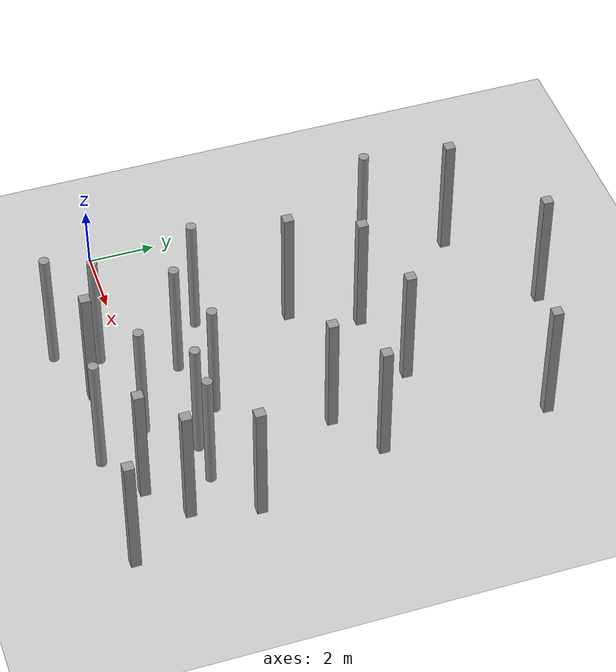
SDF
<sdf version="1.6">
 <world name="default">
  <model name="ground_plane">
   <static>1</static>
   <link name="link">
    <collision name="collision">
     <geometry><plane><normal>0 0 1</normal><size>100 100</size></plane></geometry>
    </collision>
    <visual name="visual">
     <cast_shadows>0</cast_shadows>
     <geometry><plane><normal>0 0 1</normal><size>100 100</size></plane></geometry>
     <material>
      <script><uri>file://media/materials/scripts/gazebo.material</uri><name>Gazebo/Gray</name></script>
     </material>
    </visual>
   </link>
  </model>
  <model name="unit_box_clone_6">
   <link name="link">
    <inertial>
     <mass>1000</mass>
     <inertia><ixx>166.667</ixx><ixy>0</ixy><ixz>0</ixz><iyy>166.667</iyy><iyz>0</iyz><izz>166.667</izz></inertia>
    </inertial>
    <visual name="visual">
     <geometry><box><size>0.3 0.3 4</size></box></geometry>
     <material>
      <script><name>Gazebo/Grey</name><uri>file://media/materials/scripts/gazebo.material</uri></script>
      <shader type="vertex"><normal_map>__default__</normal_map></shader>
      <ambient>0.3 0.3 0.3 1</ambient>
      <diffuse>0.7 0.7 0.7 1</diffuse>
      <specular>0.01 0.01 0.01 1</specular>
      <emissive>0 0 0 1</emissive>
     </material>
    </visual>
    <collision name="collision">
     <geometry><box><size>0.3 0.3 4</size></box></geometry>
     <surface>
      <friction>
       <ode><mu>1</mu><mu2>1</mu2><fdir1>0 0 0</fdir1><slip1>0</slip1><slip2>0</slip2></ode>
       <torsional>
        <coefficient>1</coefficient>
        <patch_radius>0</patch_radius>
        <surface_radius>0</surface_radius>
        <use_patch_radius>1</use_patch_radius>
        <ode><slip>0</slip></ode>
       </torsional>
      </friction>
      <bounce><restitution_coefficient>0</restitution_coefficient><threshold>1e+06</threshold></bounce>
      <contact>
       <collide_without_contact>0</collide_without_contact>
       <collide_without_contact_bitmask>1</collide_without_contact_bitmask>
       <collide_bitmask>1</collide_bitmask>
       <ode>
        <soft_cfm>0</soft_cfm>
        <soft_erp>0.2</soft_erp>
        <kp>1e+13</kp>
        <kd>1</kd>
        <max_vel>0.01</max_vel>
        <min_depth>0</min_depth>
       </ode>
       <bullet>
        <split_impulse>1</split_impulse>
        <split_impulse_penetration_threshold>-0.01</split_impulse_penetration_threshold>
        <soft_cfm>0</soft_cfm>
        <soft_erp>0.2</soft_erp>
        <kp>1e+13</kp>
        <kd>1</kd>
       </bullet>
      </contact>
     </surface>
    </collision>
   </link>
   <static>0</static>
   <pose>10.5124 0.091606 2 -3e-06 1e-05 -0.009171</pose>
  </model>
  <model name="unit_cylinder">
   <link name="link">
    <inertial>
     <mass>1000</mass>
     <inertia><ixx>145.833</ixx><ixy>0</ixy><ixz>0</ixz><iyy>145.833</iyy><iyz>0</iyz><izz>125</izz></inertia>
    </inertial>
    <visual name="visual">
     <geometry><cylinder><radius>0.15</radius><length>4</length></cylinder></geometry>
     <material>
      <script><name>Gazebo/Grey</name><uri>file://media/materials/scripts/gazebo.material</uri></script>
      <shader type="vertex"><normal_map>__default__</normal_map></shader>
      <ambient>0.3 0.3 0.3 1</ambient>
      <diffuse>0.7 0.7 0.7 1</diffuse>
      <specular>0.01 0.01 0.01 1</specular>
      <emissive>0 0 0 1</emissive>
     </material>
    </visual>
    <collision name="collision">
     <geometry><cylinder><radius>0.15</radius><length>4</length></cylinder></geometry>
     <surface>
      <friction>
       <ode><mu>1</mu><mu2>1</mu2><fdir1>0 0 0</fdir1><slip1>0</slip1><slip2>0</slip2></ode>
       <torsional>
        <coefficient>1</coefficient>
        <patch_radius>0</patch_radius>
        <surface_radius>0</surface_radius>
        <use_patch_radius>1</use_patch_radius>
        <ode><slip>0</slip></ode>
       </torsional>
      </friction>
      <bounce><restitution_coefficient>0</restitution_coefficient><threshold>1e+06</threshold></bounce>
      <contact>
       <collide_without_contact>0</collide_without_contact>
       <collide_without_contact_bitmask>1</collide_without_contact_bitmask>
       <collide_bitmask>1</collide_bitmask>
       <ode>
        <soft_cfm>0</soft_cfm>
        <soft_erp>0.2</soft_erp>
        <kp>1e+13</kp>
        <kd>1</kd>
        <max_vel>0.01</max_vel>
        <min_depth>0</min_depth>
       </ode>
       <bullet>
        <split_impulse>1</split_impulse>
        <split_impulse_penetration_threshold>-0.01</split_impulse_penetration_threshold>
        <soft_cfm>0</soft_cfm>
        <soft_erp>0.2</soft_erp>
        <kp>1e+13</kp>
        <kd>1</kd>
       </bullet>
      </contact>
     </surface>
    </collision>
   </link>
   <static>0</static>
   <pose>3.557 2.30203 1.99998 -1e-06 1e-06 -0.168337</pose>
  </model>
  <model name="unit_cylinder_clone_4">
   <link name="link">
    <inertial>
     <mass>1000</mass>
     <inertia><ixx>145.833</ixx><ixy>0</ixy><ixz>0</ixz><iyy>145.833</iyy><iyz>0</iyz><izz>125</izz></inertia>
    </inertial>
    <visual name="visual">
     <geometry><cylinder><radius>0.15</radius><length>4</length></cylinder></geometry>
     <material>
      <script><name>Gazebo/Grey</name><uri>file://media/materials/scripts/gazebo.material</uri></script>
      <shader type="vertex"><normal_map>__default__</normal_map></shader>
      <ambient>0.3 0.3 0.3 1</ambient>
      <diffuse>0.7 0.7 0.7 1</diffuse>
      <specular>0.01 0.01 0.01 1</specular>
      <emissive>0 0 0 1</emissive>
     </material>
    </visual>
    <collision name="collision">
     <geometry><cylinder><radius>0.15</radius><length>4</length></cylinder></geometry>
     <surface>
      <friction>
       <ode><mu>1</mu><mu2>1</mu2><fdir1>0 0 0</fdir1><slip1>0</slip1><slip2>0</slip2></ode>
       <torsional>
        <coefficient>1</coefficient>
        <patch_radius>0</patch_radius>
        <surface_radius>0</surface_radius>
        <use_patch_radius>1</use_patch_radius>
        <ode><slip>0</slip></ode>
       </torsional>
      </friction>
      <bounce><restitution_coefficient>0</restitution_coefficient><threshold>1e+06</threshold></bounce>
      <contact>
       <collide_without_contact>0</collide_without_contact>
       <collide_without_contact_bitmask>1</collide_without_contact_bitmask>
       <collide_bitmask>1</collide_bitmask>
       <ode>
        <soft_cfm>0</soft_cfm>
        <soft_erp>0.2</soft_erp>
        <kp>1e+13</kp>
        <kd>1</kd>
        <max_vel>0.01</max_vel>
        <min_depth>0</min_depth>
       </ode>
       <bullet>
        <split_impulse>1</split_impulse>
        <split_impulse_penetration_threshold>-0.01</split_impulse_penetration_threshold>
        <soft_cfm>0</soft_cfm>
        <soft_erp>0.2</soft_erp>
        <kp>1e+13</kp>
        <kd>1</kd>
       </bullet>
      </contact>
     </surface>
    </collision>
   </link>
   <static>0</static>
   <pose>5.12504 1.32728 1.99998 -1e-06 1e-06 -0.163617</pose>
  </model>
  <model name="unit_cylinder_clone_1_clone_7">
   <link name="link">
    <inertial>
     <mass>1000</mass>
     <inertia><ixx>145.833</ixx><ixy>0</ixy><ixz>0</ixz><iyy>145.833</iyy><iyz>0</iyz><izz>125</izz></inertia>
    </inertial>
    <visual name="visual">
     <geometry><cylinder><radius>0.15</radius><length>4</length></cylinder></geometry>
     <material>
      <script><name>Gazebo/Grey</name><uri>file://media/materials/scripts/gazebo.material</uri></script>
      <shader type="vertex"><normal_map>__default__</normal_map></shader>
      <ambient>0.3 0.3 0.3 1</ambient>
      <diffuse>0.7 0.7 0.7 1</diffuse>
      <specular>0.01 0.01 0.01 1</specular>
      <emissive>0 0 0 1</emissive>
     </material>
    </visual>
    <collision name="collision">
     <geometry><cylinder><radius>0.15</radius><length>4</length></cylinder></geometry>
     <surface>
      <friction>
       <ode><mu>1</mu><mu2>1</mu2><fdir1>0 0 0</fdir1><slip1>0</slip1><slip2>0</slip2></ode>
       <torsional>
        <coefficient>1</coefficient>
        <patch_radius>0</patch_radius>
        <surface_radius>0</surface_radius>
        <use_patch_radius>1</use_patch_radius>
        <ode><slip>0</slip></ode>
       </torsional>
      </friction>
      <bounce><restitution_coefficient>0</restitution_coefficient><threshold>1e+06</threshold></bounce>
      <contact>
       <collide_without_contact>0</collide_without_contact>
       <collide_without_contact_bitmask>1</collide_without_contact_bitmask>
       <collide_bitmask>1</collide_bitmask>
       <ode>
        <soft_cfm>0</soft_cfm>
        <soft_erp>0.2</soft_erp>
        <kp>1e+13</kp>
        <kd>1</kd>
        <max_vel>0.01</max_vel>
        <min_depth>0</min_depth>
       </ode>
       <bullet>
        <split_impulse>1</split_impulse>
        <split_impulse_penetration_threshold>-0.01</split_impulse_penetration_threshold>
        <soft_cfm>0</soft_cfm>
        <soft_erp>0.2</soft_erp>
        <kp>1e+13</kp>
        <kd>1</kd>
       </bullet>
      </contact>
     </surface>
    </collision>
   </link>
   <static>0</static>
   <pose>7.98254 -1.76181 1.99995 -0.000273 3e-06 -0.784345</pose>
  </model>
  <model name="unit_cylinder_clone_1_clone_22">
   <link name="link">
    <inertial>
     <mass>1000</mass>
     <inertia><ixx>145.833</ixx><ixy>0</ixy><ixz>0</ixz><iyy>145.833</iyy><iyz>0</iyz><izz>125</izz></inertia>
    </inertial>
    <visual name="visual">
     <geometry><cylinder><radius>0.15</radius><length>4</length></cylinder></geometry>
     <material>
      <script><name>Gazebo/Grey</name><uri>file://media/materials/scripts/gazebo.material</uri></script>
      <shader type="vertex"><normal_map>__default__</normal_map></shader>
      <ambient>0.3 0.3 0.3 1</ambient>
      <diffuse>0.7 0.7 0.7 1</diffuse>
      <specular>0.01 0.01 0.01 1</specular>
      <emissive>0 0 0 1</emissive>
     </material>
    </visual>
    <collision name="collision">
     <geometry><cylinder><radius>0.15</radius><length>4</length></cylinder></geometry>
     <surface>
      <friction>
       <ode><mu>1</mu><mu2>1</mu2><fdir1>0 0 0</fdir1><slip1>0</slip1><slip2>0</slip2></ode>
       <torsional>
        <coefficient>1</coefficient>
        <patch_radius>0</patch_radius>
        <surface_radius>0</surface_radius>
        <use_patch_radius>1</use_patch_radius>
        <ode><slip>0</slip></ode>
       </torsional>
      </friction>
      <bounce><restitution_coefficient>0</restitution_coefficient><threshold>1e+06</threshold></bounce>
      <contact>
       <collide_without_contact>0</collide_without_contact>
       <collide_without_contact_bitmask>1</collide_without_contact_bitmask>
       <collide_bitmask>1</collide_bitmask>
       <ode>
        <soft_cfm>0</soft_cfm>
        <soft_erp>0.2</soft_erp>
        <kp>1e+13</kp>
        <kd>1</kd>
        <max_vel>0.01</max_vel>
        <min_depth>0</min_depth>
       </ode>
       <bullet>
        <split_impulse>1</split_impulse>
        <split_impulse_penetration_threshold>-0.01</split_impulse_penetration_threshold>
        <soft_cfm>0</soft_cfm>
        <soft_erp>0.2</soft_erp>
        <kp>1e+13</kp>
        <kd>1</kd>
       </bullet>
      </contact>
     </surface>
    </collision>
   </link>
   <static>0</static>
   <pose>8.28134 1.01064 1.99995 -0.000273 4e-06 -0.779422</pose>
  </model>
  <model name="unit_cylinder_clone_1_clone_7_clone_1">
   <link name="link">
    <inertial>
     <mass>1000</mass>
     <inertia><ixx>145.833</ixx><ixy>0</ixy><ixz>0</ixz><iyy>145.833</iyy><iyz>0</iyz><izz>125</izz></inertia>
    </inertial>
    <visual name="visual">
     <geometry><cylinder><radius>0.15</radius><length>4</length></cylinder></geometry>
     <material>
      <script><name>Gazebo/Grey</name><uri>file://media/materials/scripts/gazebo.material</uri></script>
      <shader type="vertex"><normal_map>__default__</normal_map></shader>
      <ambient>0.3 0.3 0.3 1</ambient>
      <diffuse>0.7 0.7 0.7 1</diffuse>
      <specular>0.01 0.01 0.01 1</specular>
      <emissive>0 0 0 1</emissive>
     </material>
    </visual>
    <collision name="collision">
     <geometry><cylinder><radius>0.15</radius><length>4</length></cylinder></geometry>
     <surface>
      <friction>
       <ode><mu>1</mu><mu2>1</mu2><fdir1>0 0 0</fdir1><slip1>0</slip1><slip2>0</slip2></ode>
       <torsional>
        <coefficient>1</coefficient>
        <patch_radius>0</patch_radius>
        <surface_radius>0</surface_radius>
        <use_patch_radius>1</use_patch_radius>
        <ode><slip>0</slip></ode>
       </torsional>
      </friction>
      <bounce><restitution_coefficient>0</restitution_coefficient><threshold>1e+06</threshold></bounce>
      <contact>
       <collide_without_contact>0</collide_without_contact>
       <collide_without_contact_bitmask>1</collide_without_contact_bitmask>
       <collide_bitmask>1</collide_bitmask>
       <ode>
        <soft_cfm>0</soft_cfm>
        <soft_erp>0.2</soft_erp>
        <kp>1e+13</kp>
        <kd>1</kd>
        <max_vel>0.01</max_vel>
        <min_depth>0</min_depth>
       </ode>
       <bullet>
        <split_impulse>1</split_impulse>
        <split_impulse_penetration_threshold>-0.01</split_impulse_penetration_threshold>
        <soft_cfm>0</soft_cfm>
        <soft_erp>0.2</soft_erp>
        <kp>1e+13</kp>
        <kd>1</kd>
       </bullet>
      </contact>
     </surface>
    </collision>
   </link>
   <static>0</static>
   <pose>6.99733 1.88163 1.99995 -0.000273 6e-06 -0.770471</pose>
  </model>
  <model name="unit_cylinder_clone_8">
   <link name="link">
    <inertial>
     <mass>1000</mass>
     <inertia><ixx>145.833</ixx><ixy>0</ixy><ixz>0</ixz><iyy>145.833</iyy><iyz>0</iyz><izz>125</izz></inertia>
    </inertial>
    <visual name="visual">
     <geometry><cylinder><radius>0.15</radius><length>4</length></cylinder></geometry>
     <material>
      <script><name>Gazebo/Grey</name><uri>file://media/materials/scripts/gazebo.material</uri></script>
      <shader type="vertex"><normal_map>__default__</normal_map></shader>
      <ambient>0.3 0.3 0.3 1</ambient>
      <diffuse>0.7 0.7 0.7 1</diffuse>
      <specular>0.01 0.01 0.01 1</specular>
      <emissive>0 0 0 1</emissive>
     </material>
    </visual>
    <collision name="collision">
     <geometry><cylinder><radius>0.15</radius><length>4</length></cylinder></geometry>
     <surface>
      <friction>
       <ode><mu>1</mu><mu2>1</mu2><fdir1>0 0 0</fdir1><slip1>0</slip1><slip2>0</slip2></ode>
       <torsional>
        <coefficient>1</coefficient>
        <patch_radius>0</patch_radius>
        <surface_radius>0</surface_radius>
        <use_patch_radius>1</use_patch_radius>
        <ode><slip>0</slip></ode>
       </torsional>
      </friction>
      <bounce><restitution_coefficient>0</restitution_coefficient><threshold>1e+06</threshold></bounce>
      <contact>
       <collide_without_contact>0</collide_without_contact>
       <collide_without_contact_bitmask>1</collide_without_contact_bitmask>
       <collide_bitmask>1</collide_bitmask>
       <ode>
        <soft_cfm>0</soft_cfm>
        <soft_erp>0.2</soft_erp>
        <kp>1e+13</kp>
        <kd>1</kd>
        <max_vel>0.01</max_vel>
        <min_depth>0</min_depth>
       </ode>
       <bullet>
        <split_impulse>1</split_impulse>
        <split_impulse_penetration_threshold>-0.01</split_impulse_penetration_threshold>
        <soft_cfm>0</soft_cfm>
        <soft_erp>0.2</soft_erp>
        <kp>1e+13</kp>
        <kd>1</kd>
       </bullet>
      </contact>
     </surface>
    </collision>
   </link>
   <static>0</static>
   <pose>2.29914 7.97405 1.99998 -2e-06 1e-06 -0.174152</pose>
  </model>
  <model name="unit_cylinder_clone_9">
   <link name="link">
    <inertial>
     <mass>1000</mass>
     <inertia><ixx>145.833</ixx><ixy>0</ixy><ixz>0</ixz><iyy>145.833</iyy><iyz>0</iyz><izz>125</izz></inertia>
    </inertial>
    <visual name="visual">
     <geometry><cylinder><radius>0.15</radius><length>4</length></cylinder></geometry>
     <material>
      <script><name>Gazebo/Grey</name><uri>file://media/materials/scripts/gazebo.material</uri></script>
      <shader type="vertex"><normal_map>__default__</normal_map></shader>
      <ambient>0.3 0.3 0.3 1</ambient>
      <diffuse>0.7 0.7 0.7 1</diffuse>
      <specular>0.01 0.01 0.01 1</specular>
      <emissive>0 0 0 1</emissive>
     </material>
    </visual>
    <collision name="collision">
     <geometry><cylinder><radius>0.15</radius><length>4</length></cylinder></geometry>
     <surface>
      <friction>
       <ode><mu>1</mu><mu2>1</mu2><fdir1>0 0 0</fdir1><slip1>0</slip1><slip2>0</slip2></ode>
       <torsional>
        <coefficient>1</coefficient>
        <patch_radius>0</patch_radius>
        <surface_radius>0</surface_radius>
        <use_patch_radius>1</use_patch_radius>
        <ode><slip>0</slip></ode>
       </torsional>
      </friction>
      <bounce><restitution_coefficient>0</restitution_coefficient><threshold>1e+06</threshold></bounce>
      <contact>
       <collide_without_contact>0</collide_without_contact>
       <collide_without_contact_bitmask>1</collide_without_contact_bitmask>
       <collide_bitmask>1</collide_bitmask>
       <ode>
        <soft_cfm>0</soft_cfm>
        <soft_erp>0.2</soft_erp>
        <kp>1e+13</kp>
        <kd>1</kd>
        <max_vel>0.01</max_vel>
        <min_depth>0</min_depth>
       </ode>
       <bullet>
        <split_impulse>1</split_impulse>
        <split_impulse_penetration_threshold>-0.01</split_impulse_penetration_threshold>
        <soft_cfm>0</soft_cfm>
        <soft_erp>0.2</soft_erp>
        <kp>1e+13</kp>
        <kd>1</kd>
       </bullet>
      </contact>
     </surface>
    </collision>
   </link>
   <static>0</static>
   <pose>4.1185 -0.771527 1.99998 -1e-06 1e-06 -0.174189</pose>
  </model>
  <model name="unit_cylinder_clone_10">
   <link name="link">
    <inertial>
     <mass>1000</mass>
     <inertia><ixx>145.833</ixx><ixy>0</ixy><ixz>0</ixz><iyy>145.833</iyy><iyz>0</iyz><izz>125</izz></inertia>
    </inertial>
    <visual name="visual">
     <geometry><cylinder><radius>0.15</radius><length>4</length></cylinder></geometry>
     <material>
      <script><name>Gazebo/Grey</name><uri>file://media/materials/scripts/gazebo.material</uri></script>
      <shader type="vertex"><normal_map>__default__</normal_map></shader>
      <ambient>0.3 0.3 0.3 1</ambient>
      <diffuse>0.7 0.7 0.7 1</diffuse>
      <specular>0.01 0.01 0.01 1</specular>
      <emissive>0 0 0 1</emissive>
     </material>
    </visual>
    <collision name="collision">
     <geometry><cylinder><radius>0.15</radius><length>4</length></cylinder></geometry>
     <surface>
      <friction>
       <ode><mu>1</mu><mu2>1</mu2><fdir1>0 0 0</fdir1><slip1>0</slip1><slip2>0</slip2></ode>
       <torsional>
        <coefficient>1</coefficient>
        <patch_radius>0</patch_radius>
        <surface_radius>0</surface_radius>
        <use_patch_radius>1</use_patch_radius>
        <ode><slip>0</slip></ode>
       </torsional>
      </friction>
      <bounce><restitution_coefficient>0</restitution_coefficient><threshold>1e+06</threshold></bounce>
      <contact>
       <collide_without_contact>0</collide_without_contact>
       <collide_without_contact_bitmask>1</collide_without_contact_bitmask>
       <collide_bitmask>1</collide_bitmask>
       <ode>
        <soft_cfm>0</soft_cfm>
        <soft_erp>0.2</soft_erp>
        <kp>1e+13</kp>
        <kd>1</kd>
        <max_vel>0.01</max_vel>
        <min_depth>0</min_depth>
       </ode>
       <bullet>
        <split_impulse>1</split_impulse>
        <split_impulse_penetration_threshold>-0.01</split_impulse_penetration_threshold>
        <soft_cfm>0</soft_cfm>
        <soft_erp>0.2</soft_erp>
        <kp>1e+13</kp>
        <kd>1</kd>
       </bullet>
      </contact>
     </surface>
    </collision>
   </link>
   <static>0</static>
   <pose>9.4797 1.0038 1.99998 -2e-06 1e-06 -0.164449</pose>
  </model>
  <model name="unit_cylinder_clone_11">
   <link name="link">
    <inertial>
     <mass>1000</mass>
     <inertia><ixx>145.833</ixx><ixy>0</ixy><ixz>0</ixz><iyy>145.833</iyy><iyz>0</iyz><izz>125</izz></inertia>
    </inertial>
    <visual name="visual">
     <geometry><cylinder><radius>0.15</radius><length>4</length></cylinder></geometry>
     <material>
      <script><name>Gazebo/Grey</name><uri>file://media/materials/scripts/gazebo.material</uri></script>
      <shader type="vertex"><normal_map>__default__</normal_map></shader>
      <ambient>0.3 0.3 0.3 1</ambient>
      <diffuse>0.7 0.7 0.7 1</diffuse>
      <specular>0.01 0.01 0.01 1</specular>
      <emissive>0 0 0 1</emissive>
     </material>
    </visual>
    <collision name="collision">
     <geometry><cylinder><radius>0.15</radius><length>4</length></cylinder></geometry>
     <surface>
      <friction>
       <ode><mu>1</mu><mu2>1</mu2><fdir1>0 0 0</fdir1><slip1>0</slip1><slip2>0</slip2></ode>
       <torsional>
        <coefficient>1</coefficient>
        <patch_radius>0</patch_radius>
        <surface_radius>0</surface_radius>
        <use_patch_radius>1</use_patch_radius>
        <ode><slip>0</slip></ode>
       </torsional>
      </friction>
      <bounce><restitution_coefficient>0</restitution_coefficient><threshold>1e+06</threshold></bounce>
      <contact>
       <collide_without_contact>0</collide_without_contact>
       <collide_without_contact_bitmask>1</collide_without_contact_bitmask>
       <collide_bitmask>1</collide_bitmask>
       <ode>
        <soft_cfm>0</soft_cfm>
        <soft_erp>0.2</soft_erp>
        <kp>1e+13</kp>
        <kd>1</kd>
        <max_vel>0.01</max_vel>
        <min_depth>0</min_depth>
       </ode>
       <bullet>
        <split_impulse>1</split_impulse>
        <split_impulse_penetration_threshold>-0.01</split_impulse_penetration_threshold>
        <soft_cfm>0</soft_cfm>
        <soft_erp>0.2</soft_erp>
        <kp>1e+13</kp>
        <kd>1</kd>
       </bullet>
      </contact>
     </surface>
    </collision>
   </link>
   <static>0</static>
   <pose>7.15879 -0.271153 1.99998 -1e-06 1e-06 -0.172653</pose>
  </model>
  <model name="unit_cylinder_clone_clone_2">
   <link name="link">
    <inertial>
     <mass>1000</mass>
     <inertia><ixx>145.833</ixx><ixy>0</ixy><ixz>0</ixz><iyy>145.833</iyy><iyz>0</iyz><izz>125</izz></inertia>
    </inertial>
    <visual name="visual">
     <geometry><cylinder><radius>0.15</radius><length>4</length></cylinder></geometry>
     <material>
      <script><name>Gazebo/Grey</name><uri>file://media/materials/scripts/gazebo.material</uri></script>
      <shader type="vertex"><normal_map>__default__</normal_map></shader>
      <ambient>0.3 0.3 0.3 1</ambient>
      <diffuse>0.7 0.7 0.7 1</diffuse>
      <specular>0.01 0.01 0.01 1</specular>
      <emissive>0 0 0 1</emissive>
     </material>
    </visual>
    <collision name="collision">
     <geometry><cylinder><radius>0.15</radius><length>4</length></cylinder></geometry>
     <surface>
      <friction>
       <ode><mu>1</mu><mu2>1</mu2><fdir1>0 0 0</fdir1><slip1>0</slip1><slip2>0</slip2></ode>
       <torsional>
        <coefficient>1</coefficient>
        <patch_radius>0</patch_radius>
        <surface_radius>0</surface_radius>
        <use_patch_radius>1</use_patch_radius>
        <ode><slip>0</slip></ode>
       </torsional>
      </friction>
      <bounce><restitution_coefficient>0</restitution_coefficient><threshold>1e+06</threshold></bounce>
      <contact>
       <collide_without_contact>0</collide_without_contact>
       <collide_without_contact_bitmask>1</collide_without_contact_bitmask>
       <collide_bitmask>1</collide_bitmask>
       <ode>
        <soft_cfm>0</soft_cfm>
        <soft_erp>0.2</soft_erp>
        <kp>1e+13</kp>
        <kd>1</kd>
        <max_vel>0.01</max_vel>
        <min_depth>0</min_depth>
       </ode>
       <bullet>
        <split_impulse>1</split_impulse>
        <split_impulse_penetration_threshold>-0.01</split_impulse_penetration_threshold>
        <soft_cfm>0</soft_cfm>
        <soft_erp>0.2</soft_erp>
        <kp>1e+13</kp>
        <kd>1</kd>
       </bullet>
      </contact>
     </surface>
    </collision>
   </link>
   <static>0</static>
   <pose>3.61552 -2.0312 1.99998 -1e-06 1e-06 -0.158868</pose>
  </model>
  <model name="unit_box_clone_26_clone_2">
   <link name="link">
    <inertial>
     <mass>1000</mass>
     <inertia><ixx>166.667</ixx><ixy>0</ixy><ixz>0</ixz><iyy>166.667</iyy><iyz>0</iyz><izz>166.667</izz></inertia>
    </inertial>
    <visual name="visual">
     <geometry><box><size>0.3 0.3 4</size></box></geometry>
     <material>
      <script><name>Gazebo/Grey</name><uri>file://media/materials/scripts/gazebo.material</uri></script>
      <shader type="vertex"><normal_map>__default__</normal_map></shader>
      <ambient>0.3 0.3 0.3 1</ambient>
      <diffuse>0.7 0.7 0.7 1</diffuse>
      <specular>0.01 0.01 0.01 1</specular>
      <emissive>0 0 0 1</emissive>
     </material>
    </visual>
    <collision name="collision">
     <geometry><box><size>0.3 0.3 4</size></box></geometry>
     <surface>
      <friction>
       <ode><mu>1</mu><mu2>1</mu2><fdir1>0 0 0</fdir1><slip1>0</slip1><slip2>0</slip2></ode>
       <torsional>
        <coefficient>1</coefficient>
        <patch_radius>0</patch_radius>
        <surface_radius>0</surface_radius>
        <use_patch_radius>1</use_patch_radius>
        <ode><slip>0</slip></ode>
       </torsional>
      </friction>
      <bounce><restitution_coefficient>0</restitution_coefficient><threshold>1e+06</threshold></bounce>
      <contact>
       <collide_without_contact>0</collide_without_contact>
       <collide_without_contact_bitmask>1</collide_without_contact_bitmask>
       <collide_bitmask>1</collide_bitmask>
       <ode>
        <soft_cfm>0</soft_cfm>
        <soft_erp>0.2</soft_erp>
        <kp>1e+13</kp>
        <kd>1</kd>
        <max_vel>0.01</max_vel>
        <min_depth>0</min_depth>
       </ode>
       <bullet>
        <split_impulse>1</split_impulse>
        <split_impulse_penetration_threshold>-0.01</split_impulse_penetration_threshold>
        <soft_cfm>0</soft_cfm>
        <soft_erp>0.2</soft_erp>
        <kp>1e+13</kp>
        <kd>1</kd>
       </bullet>
      </contact>
     </surface>
    </collision>
   </link>
   <static>0</static>
   <pose>5.4219 -1.32667 2.00001 3.6e-05 7e-06 -0.001351</pose>
  </model>
  <model name="unit_box_clone_26_clone_4">
   <link name="link">
    <inertial>
     <mass>1000</mass>
     <inertia><ixx>166.667</ixx><ixy>0</ixy><ixz>0</ixz><iyy>166.667</iyy><iyz>0</iyz><izz>166.667</izz></inertia>
    </inertial>
    <visual name="visual">
     <geometry><box><size>0.3 0.3 4</size></box></geometry>
     <material>
      <script><name>Gazebo/Grey</name><uri>file://media/materials/scripts/gazebo.material</uri></script>
      <shader type="vertex"><normal_map>__default__</normal_map></shader>
      <ambient>0.3 0.3 0.3 1</ambient>
      <diffuse>0.7 0.7 0.7 1</diffuse>
      <specular>0.01 0.01 0.01 1</specular>
      <emissive>0 0 0 1</emissive>
     </material>
    </visual>
    <collision name="collision">
     <geometry><box><size>0.3 0.3 4</size></box></geometry>
     <surface>
      <friction>
       <ode><mu>1</mu><mu2>1</mu2><fdir1>0 0 0</fdir1><slip1>0</slip1><slip2>0</slip2></ode>
       <torsional>
        <coefficient>1</coefficient>
        <patch_radius>0</patch_radius>
        <surface_radius>0</surface_radius>
        <use_patch_radius>1</use_patch_radius>
        <ode><slip>0</slip></ode>
       </torsional>
      </friction>
      <bounce><restitution_coefficient>0</restitution_coefficient><threshold>1e+06</threshold></bounce>
      <contact>
       <collide_without_contact>0</collide_without_contact>
       <collide_without_contact_bitmask>1</collide_without_contact_bitmask>
       <collide_bitmask>1</collide_bitmask>
       <ode>
        <soft_cfm>0</soft_cfm>
        <soft_erp>0.2</soft_erp>
        <kp>1e+13</kp>
        <kd>1</kd>
        <max_vel>0.01</max_vel>
        <min_depth>0</min_depth>
       </ode>
       <bullet>
        <split_impulse>1</split_impulse>
        <split_impulse_penetration_threshold>-0.01</split_impulse_penetration_threshold>
        <soft_cfm>0</soft_cfm>
        <soft_erp>0.2</soft_erp>
        <kp>1e+13</kp>
        <kd>1</kd>
       </bullet>
      </contact>
     </surface>
    </collision>
   </link>
   <static>0</static>
   <pose>9.38015 -0.901301 2 -3e-06 -2.3e-05 -0.001449</pose>
  </model>
  <model name="unit_box_clone_26_clone_5">
   <link name="link">
    <inertial>
     <mass>1000</mass>
     <inertia><ixx>166.667</ixx><ixy>0</ixy><ixz>0</ixz><iyy>166.667</iyy><iyz>0</iyz><izz>166.667</izz></inertia>
    </inertial>
    <visual name="visual">
     <geometry><box><size>0.3 0.3 4</size></box></geometry>
     <material>
      <script><name>Gazebo/Grey</name><uri>file://media/materials/scripts/gazebo.material</uri></script>
      <shader type="vertex"><normal_map>__default__</normal_map></shader>
      <ambient>0.3 0.3 0.3 1</ambient>
      <diffuse>0.7 0.7 0.7 1</diffuse>
      <specular>0.01 0.01 0.01 1</specular>
      <emissive>0 0 0 1</emissive>
     </material>
    </visual>
    <collision name="collision">
     <geometry><box><size>0.3 0.3 4</size></box></geometry>
     <surface>
      <friction>
       <ode><mu>1</mu><mu2>1</mu2><fdir1>0 0 0</fdir1><slip1>0</slip1><slip2>0</slip2></ode>
       <torsional>
        <coefficient>1</coefficient>
        <patch_radius>0</patch_radius>
        <surface_radius>0</surface_radius>
        <use_patch_radius>1</use_patch_radius>
        <ode><slip>0</slip></ode>
       </torsional>
      </friction>
      <bounce><restitution_coefficient>0</restitution_coefficient><threshold>1e+06</threshold></bounce>
      <contact>
       <collide_without_contact>0</collide_without_contact>
       <collide_without_contact_bitmask>1</collide_without_contact_bitmask>
       <collide_bitmask>1</collide_bitmask>
       <ode>
        <soft_cfm>0</soft_cfm>
        <soft_erp>0.2</soft_erp>
        <kp>1e+13</kp>
        <kd>1</kd>
        <max_vel>0.01</max_vel>
        <min_depth>0</min_depth>
       </ode>
       <bullet>
        <split_impulse>1</split_impulse>
        <split_impulse_penetration_threshold>-0.01</split_impulse_penetration_threshold>
        <soft_cfm>0</soft_cfm>
        <soft_erp>0.2</soft_erp>
        <kp>1e+13</kp>
        <kd>1</kd>
       </bullet>
      </contact>
     </surface>
    </collision>
   </link>
   <static>0</static>
   <pose>11.7154 -1.81908 2 -0 -0 -0.001132</pose>
  </model>
  <model name="unit_box_clone_22_clone">
   <link name="link">
    <inertial>
     <mass>1000</mass>
     <inertia><ixx>166.667</ixx><ixy>0</ixy><ixz>0</ixz><iyy>166.667</iyy><iyz>0</iyz><izz>166.667</izz></inertia>
    </inertial>
    <visual name="visual">
     <geometry><box><size>0.3 0.3 4</size></box></geometry>
     <material>
      <script><name>Gazebo/Grey</name><uri>file://media/materials/scripts/gazebo.material</uri></script>
      <shader type="vertex"><normal_map>__default__</normal_map></shader>
      <ambient>0.3 0.3 0.3 1</ambient>
      <diffuse>0.7 0.7 0.7 1</diffuse>
      <specular>0.01 0.01 0.01 1</specular>
      <emissive>0 0 0 1</emissive>
     </material>
    </visual>
    <collision name="collision">
     <geometry><box><size>0.3 0.3 4</size></box></geometry>
     <surface>
      <friction>
       <ode><mu>1</mu><mu2>1</mu2><fdir1>0 0 0</fdir1><slip1>0</slip1><slip2>0</slip2></ode>
       <torsional>
        <coefficient>1</coefficient>
        <patch_radius>0</patch_radius>
        <surface_radius>0</surface_radius>
        <use_patch_radius>1</use_patch_radius>
        <ode><slip>0</slip></ode>
       </torsional>
      </friction>
      <bounce><restitution_coefficient>0</restitution_coefficient><threshold>1e+06</threshold></bounce>
      <contact>
       <collide_without_contact>0</collide_without_contact>
       <collide_without_contact_bitmask>1</collide_without_contact_bitmask>
       <collide_bitmask>1</collide_bitmask>
       <ode>
        <soft_cfm>0</soft_cfm>
        <soft_erp>0.2</soft_erp>
        <kp>1e+13</kp>
        <kd>1</kd>
        <max_vel>0.01</max_vel>
        <min_depth>0</min_depth>
       </ode>
       <bullet>
        <split_impulse>1</split_impulse>
        <split_impulse_penetration_threshold>-0.01</split_impulse_penetration_threshold>
        <soft_cfm>0</soft_cfm>
        <soft_erp>0.2</soft_erp>
        <kp>1e+13</kp>
        <kd>1</kd>
       </bullet>
      </contact>
     </surface>
    </collision>
   </link>
   <static>0</static>
   <pose>2.643 10.5359 2 2.5e-05 1e-06 -0.017179</pose>
  </model>
  <model name="unit_box_clone_22_clone_0">
   <link name="link">
    <inertial>
     <mass>1000</mass>
     <inertia><ixx>166.667</ixx><ixy>0</ixy><ixz>0</ixz><iyy>166.667</iyy><iyz>0</iyz><izz>166.667</izz></inertia>
    </inertial>
    <visual name="visual">
     <geometry><box><size>0.3 0.3 4</size></box></geometry>
     <material>
      <script><name>Gazebo/Grey</name><uri>file://media/materials/scripts/gazebo.material</uri></script>
      <shader type="vertex"><normal_map>__default__</normal_map></shader>
      <ambient>0.3 0.3 0.3 1</ambient>
      <diffuse>0.7 0.7 0.7 1</diffuse>
      <specular>0.01 0.01 0.01 1</specular>
      <emissive>0 0 0 1</emissive>
     </material>
    </visual>
    <collision name="collision">
     <geometry><box><size>0.3 0.3 4</size></box></geometry>
     <surface>
      <friction>
       <ode><mu>1</mu><mu2>1</mu2><fdir1>0 0 0</fdir1><slip1>0</slip1><slip2>0</slip2></ode>
       <torsional>
        <coefficient>1</coefficient>
        <patch_radius>0</patch_radius>
        <surface_radius>0</surface_radius>
        <use_patch_radius>1</use_patch_radius>
        <ode><slip>0</slip></ode>
       </torsional>
      </friction>
      <bounce><restitution_coefficient>0</restitution_coefficient><threshold>1e+06</threshold></bounce>
      <contact>
       <collide_without_contact>0</collide_without_contact>
       <collide_without_contact_bitmask>1</collide_without_contact_bitmask>
       <collide_bitmask>1</collide_bitmask>
       <ode>
        <soft_cfm>0</soft_cfm>
        <soft_erp>0.2</soft_erp>
        <kp>1e+13</kp>
        <kd>1</kd>
        <max_vel>0.01</max_vel>
        <min_depth>0</min_depth>
       </ode>
       <bullet>
        <split_impulse>1</split_impulse>
        <split_impulse_penetration_threshold>-0.01</split_impulse_penetration_threshold>
        <soft_cfm>0</soft_cfm>
        <soft_erp>0.2</soft_erp>
        <kp>1e+13</kp>
        <kd>1</kd>
       </bullet>
      </contact>
     </surface>
    </collision>
   </link>
   <static>0</static>
   <pose>9.97927 10.9457 2 1e-06 -0 -0.01773</pose>
  </model>
  <model name="unit_box_clone_22_clone_1">
   <link name="link">
    <inertial>
     <mass>1000</mass>
     <inertia><ixx>166.667</ixx><ixy>0</ixy><ixz>0</ixz><iyy>166.667</iyy><iyz>0</iyz><izz>166.667</izz></inertia>
    </inertial>
    <visual name="visual">
     <geometry><box><size>0.3 0.3 4</size></box></geometry>
     <material>
      <script><name>Gazebo/Grey</name><uri>file://media/materials/scripts/gazebo.material</uri></script>
      <shader type="vertex"><normal_map>__default__</normal_map></shader>
      <ambient>0.3 0.3 0.3 1</ambient>
      <diffuse>0.7 0.7 0.7 1</diffuse>
      <specular>0.01 0.01 0.01 1</specular>
      <emissive>0 0 0 1</emissive>
     </material>
    </visual>
    <collision name="collision">
     <geometry><box><size>0.3 0.3 4</size></box></geometry>
     <surface>
      <friction>
       <ode><mu>1</mu><mu2>1</mu2><fdir1>0 0 0</fdir1><slip1>0</slip1><slip2>0</slip2></ode>
       <torsional>
        <coefficient>1</coefficient>
        <patch_radius>0</patch_radius>
        <surface_radius>0</surface_radius>
        <use_patch_radius>1</use_patch_radius>
        <ode><slip>0</slip></ode>
       </torsional>
      </friction>
      <bounce><restitution_coefficient>0</restitution_coefficient><threshold>1e+06</threshold></bounce>
      <contact>
       <collide_without_contact>0</collide_without_contact>
       <collide_without_contact_bitmask>1</collide_without_contact_bitmask>
       <collide_bitmask>1</collide_bitmask>
       <ode>
        <soft_cfm>0</soft_cfm>
        <soft_erp>0.2</soft_erp>
        <kp>1e+13</kp>
        <kd>1</kd>
        <max_vel>0.01</max_vel>
        <min_depth>0</min_depth>
       </ode>
       <bullet>
        <split_impulse>1</split_impulse>
        <split_impulse_penetration_threshold>-0.01</split_impulse_penetration_threshold>
        <soft_cfm>0</soft_cfm>
        <soft_erp>0.2</soft_erp>
        <kp>1e+13</kp>
        <kd>1</kd>
       </bullet>
      </contact>
     </surface>
    </collision>
   </link>
   <static>0</static>
   <pose>4.10673 5.0271 2 0 1e-06 -0.015122</pose>
  </model>
  <model name="unit_box_clone_22_clone_2">
   <link name="link">
    <inertial>
     <mass>1000</mass>
     <inertia><ixx>166.667</ixx><ixy>0</ixy><ixz>0</ixz><iyy>166.667</iyy><iyz>0</iyz><izz>166.667</izz></inertia>
    </inertial>
    <visual name="visual">
     <geometry><box><size>0.3 0.3 4</size></box></geometry>
     <material>
      <script><name>Gazebo/Grey</name><uri>file://media/materials/scripts/gazebo.material</uri></script>
      <shader type="vertex"><normal_map>__default__</normal_map></shader>
      <ambient>0.3 0.3 0.3 1</ambient>
      <diffuse>0.7 0.7 0.7 1</diffuse>
      <specular>0.01 0.01 0.01 1</specular>
      <emissive>0 0 0 1</emissive>
     </material>
    </visual>
    <collision name="collision">
     <geometry><box><size>0.3 0.3 4</size></box></geometry>
     <surface>
      <friction>
       <ode><mu>1</mu><mu2>1</mu2><fdir1>0 0 0</fdir1><slip1>0</slip1><slip2>0</slip2></ode>
       <torsional>
        <coefficient>1</coefficient>
        <patch_radius>0</patch_radius>
        <surface_radius>0</surface_radius>
        <use_patch_radius>1</use_patch_radius>
        <ode><slip>0</slip></ode>
       </torsional>
      </friction>
      <bounce><restitution_coefficient>0</restitution_coefficient><threshold>1e+06</threshold></bounce>
      <contact>
       <collide_without_contact>0</collide_without_contact>
       <collide_without_contact_bitmask>1</collide_without_contact_bitmask>
       <collide_bitmask>1</collide_bitmask>
       <ode>
        <soft_cfm>0</soft_cfm>
        <soft_erp>0.2</soft_erp>
        <kp>1e+13</kp>
        <kd>1</kd>
        <max_vel>0.01</max_vel>
        <min_depth>0</min_depth>
       </ode>
       <bullet>
        <split_impulse>1</split_impulse>
        <split_impulse_penetration_threshold>-0.01</split_impulse_penetration_threshold>
        <soft_cfm>0</soft_cfm>
        <soft_erp>0.2</soft_erp>
        <kp>1e+13</kp>
        <kd>1</kd>
       </bullet>
      </contact>
     </surface>
    </collision>
   </link>
   <static>0</static>
   <pose>8.49664 4.89878 2 -1.7e-05 -0 -0.01294</pose>
  </model>
  <model name="unit_box_clone_22_clone_3">
   <link name="link">
    <inertial>
     <mass>1000</mass>
     <inertia><ixx>166.667</ixx><ixy>0</ixy><ixz>0</ixz><iyy>166.667</iyy><iyz>0</iyz><izz>166.667</izz></inertia>
    </inertial>
    <visual name="visual">
     <geometry><box><size>0.3 0.3 4</size></box></geometry>
     <material>
      <script><name>Gazebo/Grey</name><uri>file://media/materials/scripts/gazebo.material</uri></script>
      <shader type="vertex"><normal_map>__default__</normal_map></shader>
      <ambient>0.3 0.3 0.3 1</ambient>
      <diffuse>0.7 0.7 0.7 1</diffuse>
      <specular>0.01 0.01 0.01 1</specular>
      <emissive>0 0 0 1</emissive>
     </material>
    </visual>
    <collision name="collision">
     <geometry><box><size>0.3 0.3 4</size></box></geometry>
     <surface>
      <friction>
       <ode><mu>1</mu><mu2>1</mu2><fdir1>0 0 0</fdir1><slip1>0</slip1><slip2>0</slip2></ode>
       <torsional>
        <coefficient>1</coefficient>
        <patch_radius>0</patch_radius>
        <surface_radius>0</surface_radius>
        <use_patch_radius>1</use_patch_radius>
        <ode><slip>0</slip></ode>
       </torsional>
      </friction>
      <bounce><restitution_coefficient>0</restitution_coefficient><threshold>1e+06</threshold></bounce>
      <contact>
       <collide_without_contact>0</collide_without_contact>
       <collide_without_contact_bitmask>1</collide_without_contact_bitmask>
       <collide_bitmask>1</collide_bitmask>
       <ode>
        <soft_cfm>0</soft_cfm>
        <soft_erp>0.2</soft_erp>
        <kp>1e+13</kp>
        <kd>1</kd>
        <max_vel>0.01</max_vel>
        <min_depth>0</min_depth>
       </ode>
       <bullet>
        <split_impulse>1</split_impulse>
        <split_impulse_penetration_threshold>-0.01</split_impulse_penetration_threshold>
        <soft_cfm>0</soft_cfm>
        <soft_erp>0.2</soft_erp>
        <kp>1e+13</kp>
        <kd>1</kd>
       </bullet>
      </contact>
     </surface>
    </collision>
   </link>
   <static>0</static>
   <pose>5.72137 12.3949 2 3.4e-05 2e-06 -0.015984</pose>
  </model>
  <model name="unit_box_clone_22_clone_4">
   <link name="link">
    <inertial>
     <mass>1000</mass>
     <inertia><ixx>166.667</ixx><ixy>0</ixy><ixz>0</ixz><iyy>166.667</iyy><iyz>0</iyz><izz>166.667</izz></inertia>
    </inertial>
    <visual name="visual">
     <geometry><box><size>0.3 0.3 4</size></box></geometry>
     <material>
      <script><name>Gazebo/Grey</name><uri>file://media/materials/scripts/gazebo.material</uri></script>
      <shader type="vertex"><normal_map>__default__</normal_map></shader>
      <ambient>0.3 0.3 0.3 1</ambient>
      <diffuse>0.7 0.7 0.7 1</diffuse>
      <specular>0.01 0.01 0.01 1</specular>
      <emissive>0 0 0 1</emissive>
     </material>
    </visual>
    <collision name="collision">
     <geometry><box><size>0.3 0.3 4</size></box></geometry>
     <surface>
      <friction>
       <ode><mu>1</mu><mu2>1</mu2><fdir1>0 0 0</fdir1><slip1>0</slip1><slip2>0</slip2></ode>
       <torsional>
        <coefficient>1</coefficient>
        <patch_radius>0</patch_radius>
        <surface_radius>0</surface_radius>
        <use_patch_radius>1</use_patch_radius>
        <ode><slip>0</slip></ode>
       </torsional>
      </friction>
      <bounce><restitution_coefficient>0</restitution_coefficient><threshold>1e+06</threshold></bounce>
      <contact>
       <collide_without_contact>0</collide_without_contact>
       <collide_without_contact_bitmask>1</collide_without_contact_bitmask>
       <collide_bitmask>1</collide_bitmask>
       <ode>
        <soft_cfm>0</soft_cfm>
        <soft_erp>0.2</soft_erp>
        <kp>1e+13</kp>
        <kd>1</kd>
        <max_vel>0.01</max_vel>
        <min_depth>0</min_depth>
       </ode>
       <bullet>
        <split_impulse>1</split_impulse>
        <split_impulse_penetration_threshold>-0.01</split_impulse_penetration_threshold>
        <soft_cfm>0</soft_cfm>
        <soft_erp>0.2</soft_erp>
        <kp>1e+13</kp>
        <kd>1</kd>
       </bullet>
      </contact>
     </surface>
    </collision>
   </link>
   <static>0</static>
   <pose>9.97959 5.95191 2.00001 6e-06 4.3e-05 -0.014121</pose>
  </model>
  <model name="unit_box_clone_22_clone_5">
   <link name="link">
    <inertial>
     <mass>1000</mass>
     <inertia><ixx>166.667</ixx><ixy>0</ixy><ixz>0</ixz><iyy>166.667</iyy><iyz>0</iyz><izz>166.667</izz></inertia>
    </inertial>
    <visual name="visual">
     <geometry><box><size>0.3 0.3 4</size></box></geometry>
     <material>
      <script><name>Gazebo/Grey</name><uri>file://media/materials/scripts/gazebo.material</uri></script>
      <shader type="vertex"><normal_map>__default__</normal_map></shader>
      <ambient>0.3 0.3 0.3 1</ambient>
      <diffuse>0.7 0.7 0.7 1</diffuse>
      <specular>0.01 0.01 0.01 1</specular>
      <emissive>0 0 0 1</emissive>
     </material>
    </visual>
    <collision name="collision">
     <geometry><box><size>0.3 0.3 4</size></box></geometry>
     <surface>
      <friction>
       <ode><mu>1</mu><mu2>1</mu2><fdir1>0 0 0</fdir1><slip1>0</slip1><slip2>0</slip2></ode>
       <torsional>
        <coefficient>1</coefficient>
        <patch_radius>0</patch_radius>
        <surface_radius>0</surface_radius>
        <use_patch_radius>1</use_patch_radius>
        <ode><slip>0</slip></ode>
       </torsional>
      </friction>
      <bounce><restitution_coefficient>0</restitution_coefficient><threshold>1e+06</threshold></bounce>
      <contact>
       <collide_without_contact>0</collide_without_contact>
       <collide_without_contact_bitmask>1</collide_without_contact_bitmask>
       <collide_bitmask>1</collide_bitmask>
       <ode>
        <soft_cfm>0</soft_cfm>
        <soft_erp>0.2</soft_erp>
        <kp>1e+13</kp>
        <kd>1</kd>
        <max_vel>0.01</max_vel>
        <min_depth>0</min_depth>
       </ode>
       <bullet>
        <split_impulse>1</split_impulse>
        <split_impulse_penetration_threshold>-0.01</split_impulse_penetration_threshold>
        <soft_cfm>0</soft_cfm>
        <soft_erp>0.2</soft_erp>
        <kp>1e+13</kp>
        <kd>1</kd>
       </bullet>
      </contact>
     </surface>
    </collision>
   </link>
   <static>0</static>
   <pose>7.4238 7.56363 2 2e-06 0 -0.016049</pose>
  </model>
  <model name="unit_box_clone_22_clone_6">
   <link name="link">
    <inertial>
     <mass>1000</mass>
     <inertia><ixx>166.667</ixx><ixy>0</ixy><ixz>0</ixz><iyy>166.667</iyy><iyz>0</iyz><izz>166.667</izz></inertia>
    </inertial>
    <visual name="visual">
     <geometry><box><size>0.3 0.3 4</size></box></geometry>
     <material>
      <script><name>Gazebo/Grey</name><uri>file://media/materials/scripts/gazebo.material</uri></script>
      <shader type="vertex"><normal_map>__default__</normal_map></shader>
      <ambient>0.3 0.3 0.3 1</ambient>
      <diffuse>0.7 0.7 0.7 1</diffuse>
      <specular>0.01 0.01 0.01 1</specular>
      <emissive>0 0 0 1</emissive>
     </material>
    </visual>
    <collision name="collision">
     <geometry><box><size>0.3 0.3 4</size></box></geometry>
     <surface>
      <friction>
       <ode><mu>1</mu><mu2>1</mu2><fdir1>0 0 0</fdir1><slip1>0</slip1><slip2>0</slip2></ode>
       <torsional>
        <coefficient>1</coefficient>
        <patch_radius>0</patch_radius>
        <surface_radius>0</surface_radius>
        <use_patch_radius>1</use_patch_radius>
        <ode><slip>0</slip></ode>
       </torsional>
      </friction>
      <bounce><restitution_coefficient>0</restitution_coefficient><threshold>1e+06</threshold></bounce>
      <contact>
       <collide_without_contact>0</collide_without_contact>
       <collide_without_contact_bitmask>1</collide_without_contact_bitmask>
       <collide_bitmask>1</collide_bitmask>
       <ode>
        <soft_cfm>0</soft_cfm>
        <soft_erp>0.2</soft_erp>
        <kp>1e+13</kp>
        <kd>1</kd>
        <max_vel>0.01</max_vel>
        <min_depth>0</min_depth>
       </ode>
       <bullet>
        <split_impulse>1</split_impulse>
        <split_impulse_penetration_threshold>-0.01</split_impulse_penetration_threshold>
        <soft_cfm>0</soft_cfm>
        <soft_erp>0.2</soft_erp>
        <kp>1e+13</kp>
        <kd>1</kd>
       </bullet>
      </contact>
     </surface>
    </collision>
   </link>
   <static>0</static>
   <pose>11 1.99999 2 -1e-06 -0 -0.018405</pose>
  </model>
  <model name="unit_box_clone_22_clone_9">
   <link name="link">
    <inertial>
     <mass>1000</mass>
     <inertia><ixx>166.667</ixx><ixy>0</ixy><ixz>0</ixz><iyy>166.667</iyy><iyz>0</iyz><izz>166.667</izz></inertia>
    </inertial>
    <visual name="visual">
     <geometry><box><size>0.3 0.3 4</size></box></geometry>
     <material>
      <script><name>Gazebo/Grey</name><uri>file://media/materials/scripts/gazebo.material</uri></script>
      <shader type="vertex"><normal_map>__default__</normal_map></shader>
      <ambient>0.3 0.3 0.3 1</ambient>
      <diffuse>0.7 0.7 0.7 1</diffuse>
      <specular>0.01 0.01 0.01 1</specular>
      <emissive>0 0 0 1</emissive>
     </material>
    </visual>
    <collision name="collision">
     <geometry><box><size>0.3 0.3 4</size></box></geometry>
     <surface>
      <friction>
       <ode><mu>1</mu><mu2>1</mu2><fdir1>0 0 0</fdir1><slip1>0</slip1><slip2>0</slip2></ode>
       <torsional>
        <coefficient>1</coefficient>
        <patch_radius>0</patch_radius>
        <surface_radius>0</surface_radius>
        <use_patch_radius>1</use_patch_radius>
        <ode><slip>0</slip></ode>
       </torsional>
      </friction>
      <bounce><restitution_coefficient>0</restitution_coefficient><threshold>1e+06</threshold></bounce>
      <contact>
       <collide_without_contact>0</collide_without_contact>
       <collide_without_contact_bitmask>1</collide_without_contact_bitmask>
       <collide_bitmask>1</collide_bitmask>
       <ode>
        <soft_cfm>0</soft_cfm>
        <soft_erp>0.2</soft_erp>
        <kp>1e+13</kp>
        <kd>1</kd>
        <max_vel>0.01</max_vel>
        <min_depth>0</min_depth>
       </ode>
       <bullet>
        <split_impulse>1</split_impulse>
        <split_impulse_penetration_threshold>-0.01</split_impulse_penetration_threshold>
        <soft_cfm>0</soft_cfm>
        <soft_erp>0.2</soft_erp>
        <kp>1e+13</kp>
        <kd>1</kd>
       </bullet>
      </contact>
     </surface>
    </collision>
   </link>
   <static>0</static>
   <pose>4.98341 6.98764 2 -4e-06 1.6e-05 -0.016808</pose>
  </model>
 </world>
</sdf>
